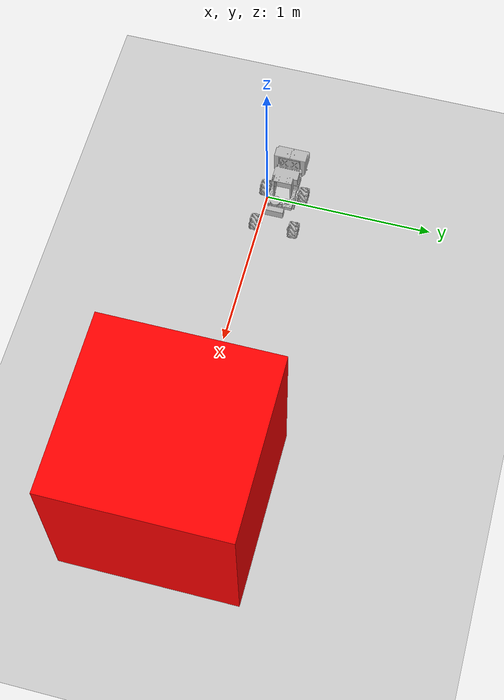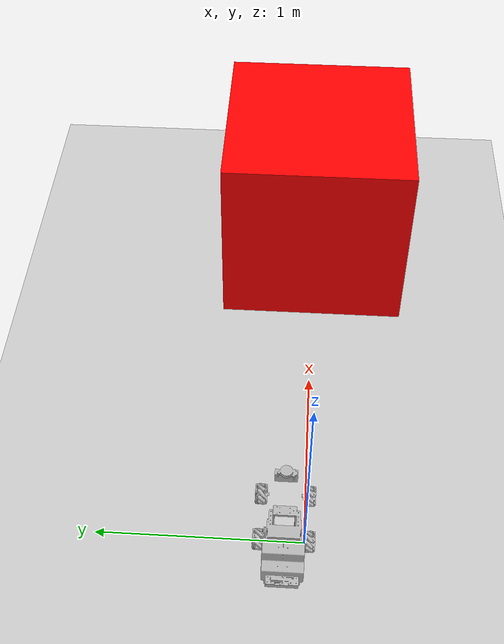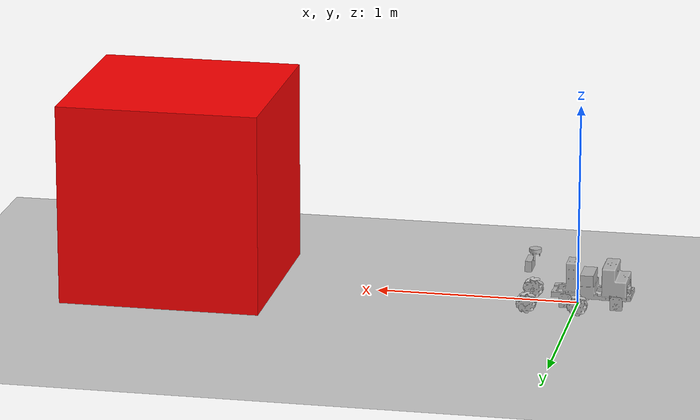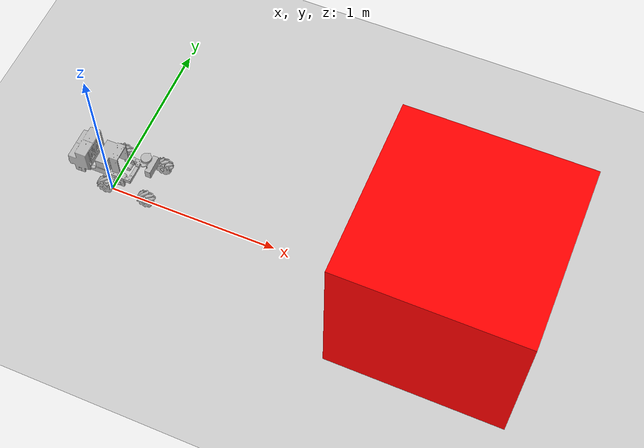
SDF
<?xml version="1.0" ?>
<sdf version="1.6">
  <world name="example_world">

    <physics name="1ms" type="ignored">
      <max_step_size>0.001</max_step_size>
      <real_time_factor>1.0</real_time_factor>
    </physics>
    <plugin
      filename="ignition-gazebo-physics-system"
      name="ignition::gazebo::systems::Physics">
    </plugin>
    <plugin
      filename="libignition-gazebo-sensors-system.so"
      name="ignition::gazebo::systems::Sensors">
      <render_engine>ogre2</render_engine>
    </plugin>
    <plugin
      filename="ignition-gazebo-user-commands-system"
      name="ignition::gazebo::systems::UserCommands">
    </plugin>
    <plugin
      filename="ignition-gazebo-scene-broadcaster-system"
      name="ignition::gazebo::systems::SceneBroadcaster">
    </plugin>
    <plugin
      filename="libignition-gazebo-contact-system.so"
      name="ignition::gazebo::systems::Contact">
    </plugin>

    <gui fullscreen="0">
      <!-- 3D scene -->
      <plugin filename="MinimalScene" name="3D View">
        <ignition-gui>
          <title>3D View</title>
          <property type="bool" key="showTitleBar">false</property>
          <property type="string" key="state">docked</property>
        </ignition-gui>

        <engine>ogre2</engine>
        <scene>scene</scene>
        <ambient_light>0.4 0.4 0.4</ambient_light>
        <background_color>0.8 0.8 0.8</background_color>
        <camera_pose>-6 0 6 0 0.5 0</camera_pose>
      </plugin>

      <!-- Plugins that add functionality to the scene -->
      <plugin filename="EntityContextMenuPlugin" name="Entity context menu">
        <ignition-gui>
          <property key="state" type="string">floating</property>
          <property key="width" type="double">5</property>
          <property key="height" type="double">5</property>
          <property key="showTitleBar" type="bool">false</property>
        </ignition-gui>
      </plugin>
      <plugin filename="GzSceneManager" name="Scene Manager">
        <ignition-gui>
          <property key="resizable" type="bool">false</property>
          <property key="width" type="double">5</property>
          <property key="height" type="double">5</property>
          <property key="state" type="string">floating</property>
          <property key="showTitleBar" type="bool">false</property>
        </ignition-gui>
      </plugin>
      <plugin filename="InteractiveViewControl" name="Interactive view control">
        <ignition-gui>
          <property key="resizable" type="bool">false</property>
          <property key="width" type="double">5</property>
          <property key="height" type="double">5</property>
          <property key="state" type="string">floating</property>
          <property key="showTitleBar" type="bool">false</property>
        </ignition-gui>
      </plugin>
      <plugin filename="CameraTracking" name="Camera Tracking">
        <ignition-gui>
          <property key="resizable" type="bool">false</property>
          <property key="width" type="double">5</property>
          <property key="height" type="double">5</property>
          <property key="state" type="string">floating</property>
          <property key="showTitleBar" type="bool">false</property>
        </ignition-gui>
      </plugin>
      <!-- World control -->
      <plugin filename="WorldControl" name="World control">
        <ignition-gui>
          <title>World control</title>
          <property type="bool" key="showTitleBar">false</property>
          <property type="bool" key="resizable">false</property>
          <property type="double" key="height">72</property>
          <property type="double" key="width">121</property>
          <property type="double" key="z">1</property>

          <property type="string" key="state">floating</property>
          <anchors target="3D View">
            <line own="left" target="left"/>
            <line own="bottom" target="bottom"/>
          </anchors>
        </ignition-gui>

        <play_pause>true</play_pause>
        <step>true</step>
        <start_paused>true</start_paused>
        <use_event>true</use_event>
      </plugin>

      <!-- World statistics -->
      <plugin filename="WorldStats" name="World stats">
        <ignition-gui>
          <title>World stats</title>
          <property type="bool" key="showTitleBar">false</property>
          <property type="bool" key="resizable">false</property>
          <property type="double" key="height">110</property>
          <property type="double" key="width">290</property>
          <property type="double" key="z">1</property>

          <property type="string" key="state">floating</property>
          <anchors target="3D View">
            <line own="right" target="right"/>
            <line own="bottom" target="bottom"/>
          </anchors>
        </ignition-gui>

        <sim_time>true</sim_time>
        <real_time>true</real_time>
        <real_time_factor>true</real_time_factor>
        <iterations>true</iterations>
      </plugin>

      <plugin
        filename="VisualizeLidar"
        name="Visualize Lidar">
      </plugin>

      <!-- Inspector -->
      <plugin filename="ComponentInspector" name="Component inspector">
        <ignition-gui>
          <property type="string" key="state">docked</property>
        </ignition-gui>
      </plugin>

      <!-- Entity tree -->
      <plugin filename="EntityTree" name="Entity tree">
        <ignition-gui>
          <property type="string" key="state">docked</property>
        </ignition-gui>
      </plugin>
  </gui>

     <light type="directional" name="sun">
      <cast_shadows>false</cast_shadows>
      <pose>0 0 10 0 0 0</pose>
      <diffuse>1 1 1 1</diffuse>
      <specular>0.5 0.5 0.5 1</specular>
      <attenuation>
        <range>1000</range>
        <constant>0.9</constant>
        <linear>0.01</linear>
        <quadratic>0.001</quadratic>
      </attenuation>
      <direction>-0.5 0.1 -0.9</direction>
    </light>

    <model name="ground_plane">
      <static>true</static>
      <link name="link">
        <collision name="collision">
          <geometry>
            <plane>
              <normal>0 0 1</normal>
              <size>100 100</size>
            </plane>
          </geometry>
          <surface>
            <friction>
              <ode>
                <mu>50</mu>
              </ode>
            </friction>
          </surface>
        </collision>
        <visual name="visual">
          <geometry>
            <plane>
              <normal>0 0 1</normal>
              <size>100 100</size>
            </plane>
          </geometry>
          <material>
            <ambient>0.8 0.8 0.8 1</ambient>
            <diffuse>0.8 0.8 0.8 1</diffuse>
            <specular>0.8 0.8 0.8 1</specular>
          </material>
        </visual>
      </link>
    </model>

    <include>
      <name>mecanum_bot</name>
      <uri>model://mecanum_bot</uri>
      <pose>0.1 0.1 0.1 0 0 0</pose>
      <static>false</static>
    </include>

    <model name="box">
      <pose>2.0 0 0.5 0 0 0</pose>
      <link name="box_link">
        <inertial>
          <inertia>
            <ixx>1</ixx>
            <ixy>0</ixy>
            <ixz>0</ixz>
            <iyy>1</iyy>
            <iyz>0</iyz>
            <izz>1</izz>
          </inertia>
          <mass>1.0</mass>
        </inertial>
        <collision name="box_collision">
          <geometry>
            <box>
              <size>1 1 1</size>
            </box>
          </geometry>
        </collision>

        <visual name="box_visual">
          <geometry>
            <box>
              <size>1 1 1</size>
            </box>
          </geometry>
          <material>
            <ambient>1 0 0 1</ambient>
            <diffuse>1 0 0 1</diffuse>
            <specular>1 0 0 1</specular>
          </material>
        </visual>
      </link>
    </model>

  </world>
</sdf>

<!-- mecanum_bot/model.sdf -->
<sdf version="1.7">
  <model name="mecanum_bot">

    <link name="base_footprint">
    </link>

    <link name="base_link">
      <self_collide>false</self_collide>
      <inertial>
        <pose>-0.0010000044107437 0.0 0.04050000384449959 0.0 0.0 0.0</pose>
        <mass>5</mass>
        <inertia>
          <ixx>0.05</ixx>
          <ixy>0</ixy>
          <ixz>0</ixz>
          <iyy>0.05</iyy>
          <iyz>0</iyz>
          <izz>0.05</izz>
        </inertia>
      </inertial>
      <collision name ="Cube">
        <pose>-0.0010000044107437 0.0 0.04050000384449959 0.0 0.0 0.0</pose>
        <geometry>
          <box>
            <size>0.39200000195503235 0.1939999908208847 0.219000001168251038</size>
          </box>
        </geometry>
      </collision>
      <visual name="base_visual">
        <pose>0 0 0 0 -0 0</pose>
        <geometry>
          <mesh>
            <uri>package://mecanum_bot_description/mecanum_bot/meshes/mecanum_bot_chassis.obj</uri>
            <scale>1 1 1</scale>
          </mesh>
        </geometry>
      </visual>
    </link>

    <link name="front_left_wheel">
      <self_collide>false</self_collide>
      <pose>0.125 0.117 -0.041 0 0 0</pose>
      <inertial>
        <mass>0.2</mass>
        <inertia>
          <ixx>0.0001</ixx>
          <ixy>0</ixy>
          <ixz>0</ixz>
          <iyy>0.0001</iyy>
          <iyz>0</iyz>
          <izz>0.0001</izz>
        </inertia>
      </inertial>
      <visual name="front_left_wheel_visual">
        <pose>0 0 0 0 -0 0</pose>
        <geometry>
          <mesh>
            <uri>package://mecanum_bot_description/mecanum_bot/meshes/mecanum_bot_wheel.obj</uri>
            <scale>1 1 1</scale>
          </mesh>
        </geometry>
      </visual>
      <collision name="front_left_wheel_collision">
        <geometry>
          <sphere>
            <radius>0.05</radius>
          </sphere>
        </geometry>
        <surface>
          <friction>
            <ode>
              <mu>10.0</mu>
              <mu2>0.0</mu2>
              <slip1>0.0</slip1>
              <slip2>0.0</slip2>
              <fdir1 ignition:expressed_in="base_link">1 -1 0</fdir1>
            </ode>
          </friction>
          <contact>
            <ode>
              <soft_cfm>0</soft_cfm>
              <soft_erp>0.2</soft_erp>
              <kp>1e+5</kp>
              <kd>1</kd>
              <max_vel>0.01</max_vel>
              <min_depth>0.0001</min_depth>
            </ode>
          </contact>
        </surface>
      </collision>
    </link>

    <link name="rear_left_wheel">
      <self_collide>false</self_collide>
      <pose>-0.125 0.117 -0.041 0 0 0</pose>
      <inertial>
        <mass>0.2</mass>
        <inertia>
          <ixx>0.0001</ixx>
          <ixy>0</ixy>
          <ixz>0</ixz>
          <iyy>0.0001</iyy>
          <iyz>0</iyz>
          <izz>0.0001</izz>
        </inertia>
      </inertial>
      <visual name="rear_left_wheel_visual">
        <pose>0 0 0 0 -0 0</pose>
        <geometry>
          <mesh>
            <uri>package://mecanum_bot_description/mecanum_bot/meshes/mecanum_bot_wheel.obj</uri>
            <scale>1 1 1</scale>
          </mesh>
        </geometry>
      </visual>
      <collision name="rear_left_wheel_collision">
        <geometry>
          <sphere>
            <radius>0.05</radius>
          </sphere>
        </geometry>
        <surface>
          <friction>
            <ode>
              <mu>10.0</mu>
              <mu2>0.0</mu2>
              <slip1>0.0</slip1>
              <slip2>0.0</slip2>
              <fdir1 ignition:expressed_in="base_link">1 1 0</fdir1>
            </ode>
          </friction>
          <contact>
            <ode>
              <soft_cfm>0</soft_cfm>
              <soft_erp>0.2</soft_erp>
              <kp>1e+5</kp>
              <kd>1</kd>
              <max_vel>0.01</max_vel>
              <min_depth>0.0001</min_depth>
            </ode>
          </contact>
        </surface>
      </collision>
    </link>

    <link name="front_right_wheel">
      <self_collide>false</self_collide>
      <pose>0.125 -0.117 -0.041 0 0 0</pose>
      <inertial>
        <mass>0.2</mass>
        <inertia>
          <ixx>0.0001</ixx>
          <ixy>0</ixy>
          <ixz>0</ixz>
          <iyy>0.0001</iyy>
          <iyz>0</iyz>
          <izz>0.0001</izz>
        </inertia>
      </inertial>
      <visual name="front_right_wheel_visual">
        <pose>0 0 0 0 0 -3.14</pose>
        <geometry>
          <mesh>
            <uri>package://mecanum_bot_description/mecanum_bot/meshes/mecanum_bot_wheel.obj</uri>
            <scale>1 1 1</scale>
          </mesh>
        </geometry>
      </visual>
      <collision name="front_right_wheel_collision">
        <geometry>
          <sphere>
            <radius>0.05</radius>
          </sphere>
        </geometry>
        <surface>
          <friction>
            <ode>
              <mu>10.0</mu>
              <mu2>0.0</mu2>
              <slip1>0.0</slip1>
              <slip2>0.0</slip2>
              <fdir1 ignition:expressed_in="base_link">1 1 0</fdir1>
            </ode>
          </friction>
          <contact>
            <ode>
              <soft_cfm>0</soft_cfm>
              <soft_erp>0.2</soft_erp>
              <kp>1e+5</kp>
              <kd>1</kd>
              <max_vel>0.01</max_vel>
              <min_depth>0.0001</min_depth>
            </ode>
          </contact>
        </surface>
      </collision>
    </link>

    <link name="rear_right_wheel">
      <self_collide>false</self_collide>
      <pose>-0.125 -0.117 -0.041 0 0 0</pose>
      <inertial>
        <mass>0.2</mass>
        <inertia>
          <ixx>0.0001</ixx>
          <ixy>0</ixy>
          <ixz>0</ixz>
          <iyy>0.0001</iyy>
          <iyz>0</iyz>
          <izz>0.0001</izz>
        </inertia>
      </inertial>
      <visual name="rear_right_wheel_visual">
        <pose>0 0 0 0 0 -3.14</pose>
        <geometry>
          <mesh>
            <uri>package://mecanum_bot_description/mecanum_bot/meshes/mecanum_bot_wheel.obj</uri>
            <scale>1 1 1</scale>
          </mesh>
        </geometry>
      </visual>
      <collision name="rear_right_wheel_collision">
        <geometry>
          <sphere>
            <radius>0.05</radius>
          </sphere>
        </geometry>
        <surface>
          <friction>
            <ode>
              <mu>10.0</mu>
              <mu2>0.0</mu2>
              <slip1>0.0</slip1>
              <slip2>0.0</slip2>
              <fdir1 ignition:expressed_in="base_link">1 -1 0</fdir1>
            </ode>
          </friction>
          <contact>
            <ode>
              <soft_cfm>0</soft_cfm>
              <soft_erp>0.2</soft_erp>
              <kp>1e+5</kp>
              <kd>1</kd>
              <max_vel>0.01</max_vel>
              <min_depth>0.0001</min_depth>
            </ode>
          </contact>
        </surface>
      </collision>
    </link>

    <link name="base_scan">
      <pose>0.1 0. 0.1924 0 0 0</pose>
      <inertial>
        <inertia>
          <ixx>0.0001</ixx>
          <ixy>0.000</ixy>
          <ixz>0.000</ixz>
          <iyy>0.0001</iyy>
          <iyz>0.000</iyz>
          <izz>0.0001</izz>
        </inertia>
        <mass>0.125</mass>
      </inertial>
      <collision name="lidar_sensor_collision">
        <geometry>
          <box>
            <size>0.06041127070784569 0.09593304991722107 0.0502999983727932</size>
          </box>
        </geometry>
      </collision>
      <visual name="lidar_sensor_visual">
        <geometry>
          <mesh>
            <uri>package://mecanum_bot_description/mecanum_bot/meshes/ydlidar_x2l.obj</uri>
            <scale>1.0 1.0 1.0</scale>
          </mesh>
        </geometry>
      </visual>
      <sensor name="ydlidar_x2l" type="gpu_lidar">
        <always_on>true</always_on>
        <gz_frame_id>base_scan</gz_frame_id>
        <topic>scan</topic>
        <update_rate>8</update_rate>
        <visualize>true</visualize>
        <lidar>
          <scan>
            <horizontal>
              <samples>360</samples>
              <resolution>1.000000</resolution>
              <min_angle>-3.14</min_angle>
              <max_angle>3.14</max_angle>
            </horizontal>
          </scan>
          <range>
            <min>0.08</min>
            <max>12.0</max>
            <resolution>0.015000</resolution>
          </range>
          <noise>
            <type>gaussian</type>
            <mean>0.0</mean>
            <stddev>0.01</stddev>
          </noise>
        </lidar>
      </sensor>
    </link>

    <link name="oak-d_frame">
      <pose>0.143 0.0 0.136 0 0 0</pose>
      <inertial>
        <mass>0.1</mass>
      </inertial>
      <collision name="collision">
        <pose>-0.0165 0.0 -0.01525 0 0 0</pose>
        <geometry>
          <box>
            <size>0.033 0.11 0.054</size>
          </box>
        </geometry>
      </collision>
      <visual name="visual">
        <pose>-0.0165 0.0 -0.01525 0 0 0</pose>
        <geometry>
          <box>
            <size>0.033 0.11 0.054</size>
          </box>
        </geometry>
        <material name="black">
            <color rgba="0 0 0 1"/>
        </material>
      </visual>
      <sensor name="rgbd_camera" type="rgbd_camera">
        <camera>
          <horizontal_fov>1.204</horizontal_fov>
          <image>
            <width>1280</width>
            <height>720</height>
            <format>B8G8R8</format>
          </image>
          <clip>
            <near>0.1</near>
            <far>100</far>
          </clip>
          <depth_camera>
            <clip>
              <near>0.012</near>
              <far>10</far>
            </clip>
          </depth_camera>
          <noise>
            <type>gaussian</type>
            <mean>0.0</mean>
            <stddev>0.01</stddev>
          </noise>
          <distortion>
            <k1>0.080921</k1>
            <k2>-0.244505</k2>
            <k3>0.006909</k3>
            <p1>0.015070</p1>
            <p2>0.000000</p2>
            <center>0.5 0.5</center>
          </distortion>
          <lens>
            <type>stereographic</type>
            <intrinsics>
              <fx>1049.904541</fx>
              <fy>1048.576171</fy>
              <cx>635.746276</cx>
              <cy>364.500946</cy>
              <s>0.000000</s>
            </intrinsics>
          </lens>
        </camera>
        <always_on>1</always_on>
        <update_rate>15</update_rate>
        <visualize>true</visualize>
        <topic>rgbd_camera</topic>
        <enable_metrics>true</enable_metrics>
        <gz_frame_id>oak_rgb_camera_optical_frame</gz_frame_id>
      </sensor>
    </link>

    <joint name="front_left_wheel_joint" type="revolute">
      <parent>base_link</parent>
      <child>front_left_wheel</child>
      <axis>
        <xyz>0 1 0</xyz>
        <limit>
          <lower>-1.79769e+308</lower>
          <upper>1.79769e+308</upper>
        </limit>
      </axis>
    </joint>

    <joint name="rear_left_wheel_joint" type="revolute">
      <parent>base_link</parent>
      <child>rear_left_wheel</child>
      <axis>
        <xyz>0 1 0</xyz>
        <limit>
          <lower>-1.79769e+308</lower>
          <upper>1.79769e+308</upper>
        </limit>
      </axis>
    </joint>

    <joint name="front_right_wheel_joint" type="revolute">
      <parent>base_link</parent>
      <child>front_right_wheel</child>
      <axis>
        <xyz>0 1 0</xyz>
        <limit>
          <lower>-1.79769e+308</lower>
          <upper>1.79769e+308</upper>
        </limit>
      </axis>
    </joint>

    <joint name="rear_right_wheel_joint" type="revolute">
      <parent>base_link</parent>
      <child>rear_right_wheel</child>
      <axis>
        <xyz>0 1 0</xyz>
        <limit>
          <lower>-1.79769e+308</lower>
          <upper>1.79769e+308</upper>
        </limit>
      </axis>
    </joint>

    <joint name="base_scan_joint" type="fixed">
      <parent>base_link</parent>
      <child>base_scan</child>
    </joint>

    <joint name="base_link_joint" type="fixed">
      <parent>base_footprint</parent>
      <child>base_link</child>
    </joint>

    <joint name="base_link_oakd_joint" type="fixed">
      <parent>base_link</parent>
      <child>oak-d_frame</child>
    </joint>

    <!-- The MecanumDrive plugin has not implemented any odometry publishing logic. -->
    <plugin
      filename="ignition-gazebo-mecanum-drive-system"
      name="ignition::gazebo::systems::MecanumDrive">
      <front_left_joint>front_left_wheel_joint</front_left_joint>
      <front_right_joint>front_right_wheel_joint</front_right_joint>
      <back_left_joint>rear_left_wheel_joint</back_left_joint>
      <back_right_joint>rear_right_wheel_joint</back_right_joint>
      <wheel_separation>0.234</wheel_separation>
      <wheelbase>0.25</wheelbase>
      <wheel_radius>0.048</wheel_radius>
      <min_acceleration>-0.5</min_acceleration>
      <max_acceleration>0.5</max_acceleration>
    </plugin>

    <plugin
      filename="ignition-gazebo-odometry-publisher-system"
      name="ignition::gazebo::systems::OdometryPublisher">
      <robot_base_frame>base_footprint</robot_base_frame>
      <odom_frame>wheel_odom</odom_frame>
      <odom_publish_frequency>50</odom_publish_frequency>
      <gaussian_noise>0.1</gaussian_noise>
    </plugin>

    <plugin
      filename="ignition-gazebo-joint-state-publisher-system"
      name="ignition::gazebo::systems::JointStatePublisher">
    </plugin>

  </model>
</sdf>
